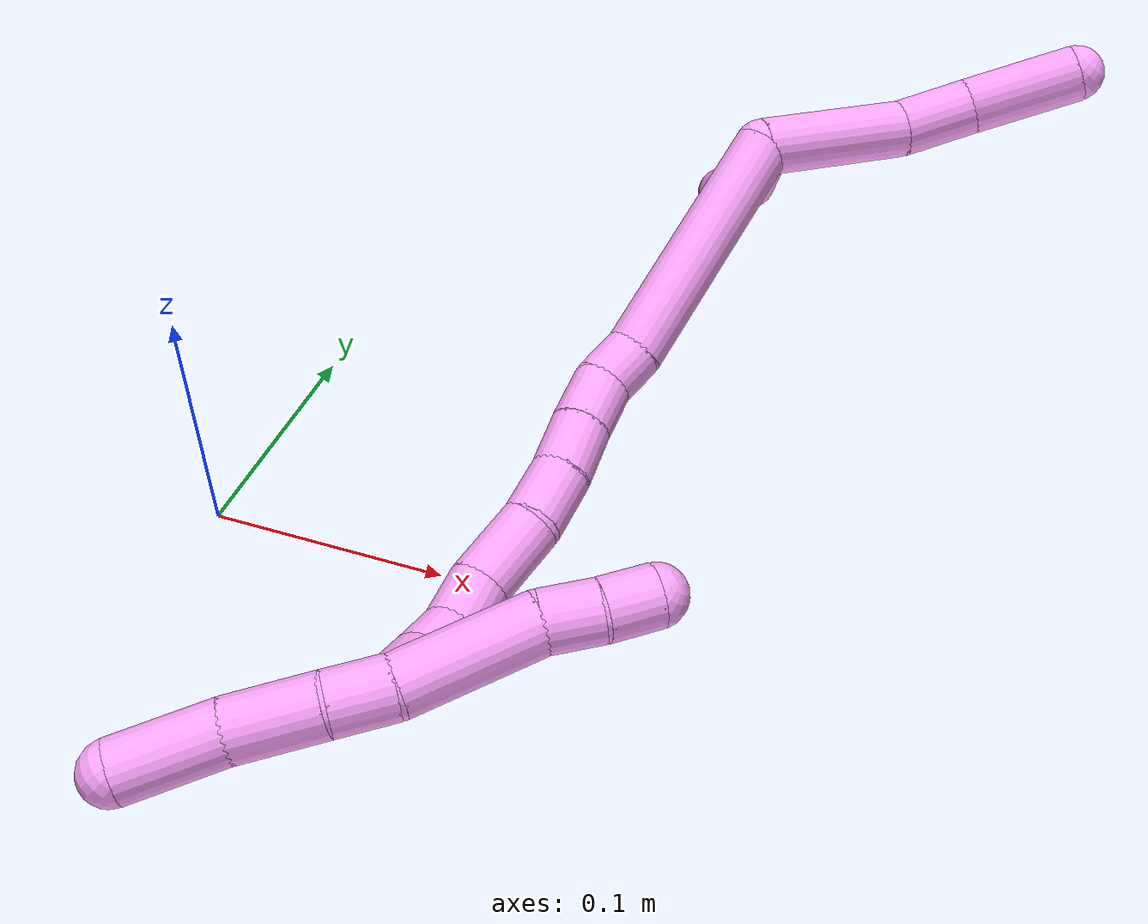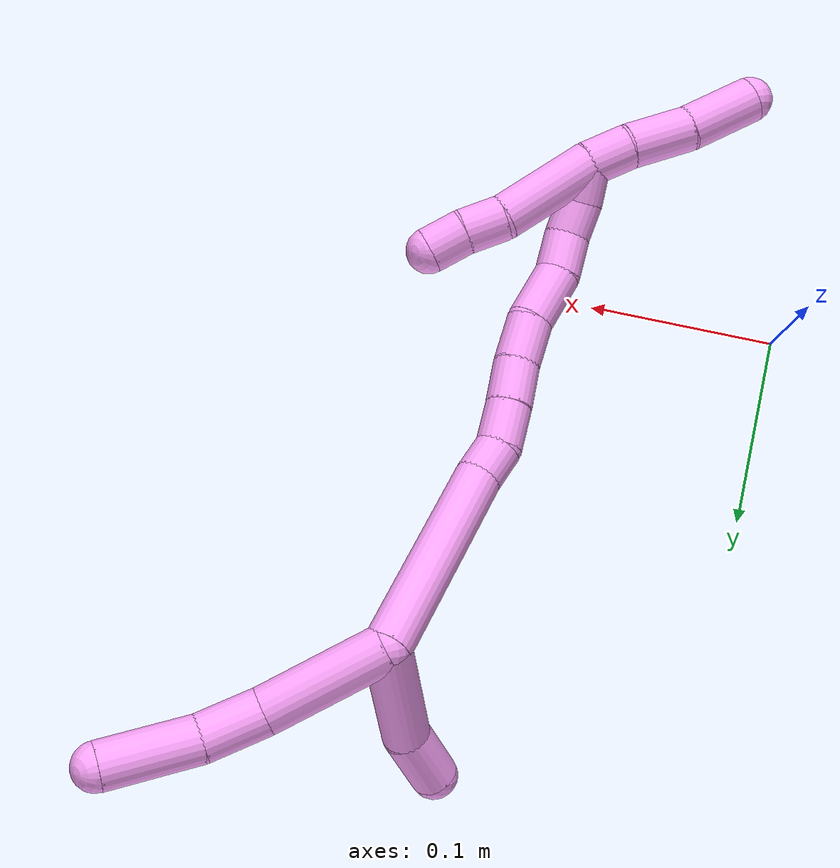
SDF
<sdf version="1.7">
 <world name="default">
  <model name="4">
   <static>0</static>
   <link name="4">
    <collision name="collision-cylinder-e_1_2_8">
     <pose>0.025408 0.002858 0.021674 -0.131092 0.860272 -0.060211</pose>
     <geometry><cylinder><radius>0.0125</radius><length>0.067037</length></cylinder></geometry>
     <surface>
      <friction><ode><mu>1.16</mu><mu2>1.16</mu2><slip1>0</slip1><slip2>0</slip2></ode></friction>
      <contact><ode><kp>1e+06</kp><kd>1</kd><max_vel>0</max_vel><min_depth>0.001</min_depth></ode></contact>
     </surface>
    </collision>
    <visual name="visual-cylinder-e_1_2_8">
     <pose>0.025408 0.002858 0.021674 -0.131092 0.860272 -0.060211</pose>
     <geometry><cylinder><radius>0.0125</radius><length>0.067037</length></cylinder></geometry>
     <material><ambient>1 0.65098 0.996078 1</ambient></material>
    </visual>
    <collision name="collision-cylinder-e_2_8_9">
     <pose>0.060223 0.006127 0.05695 -0.030248 0.604889 -0.009439</pose>
     <geometry><cylinder><radius>0.0125</radius><length>0.033086</length></cylinder></geometry>
     <surface>
      <friction><ode><mu>1.16</mu><mu2>1.16</mu2><slip1>0</slip1><slip2>0</slip2></ode></friction>
      <contact><ode><kp>1e+06</kp><kd>1</kd><max_vel>0</max_vel><min_depth>0.001</min_depth></ode></contact>
     </surface>
    </collision>
    <visual name="visual-cylinder-e_2_8_9">
     <pose>0.060223 0.006127 0.05695 -0.030248 0.604889 -0.009439</pose>
     <geometry><cylinder><radius>0.0125</radius><length>0.033086</length></cylinder></geometry>
     <material><ambient>1 0.65098 0.996078 1</ambient></material>
    </visual>
    <collision name="collision-cylinder-e_3_9_6">
     <pose>0.081655 0.003566 0.092196 0.136471 0.503136 0.035126</pose>
     <geometry><cylinder><radius>0.0125</radius><length>0.049877</length></cylinder></geometry>
     <surface>
      <friction><ode><mu>1.16</mu><mu2>1.16</mu2><slip1>0</slip1><slip2>0</slip2></ode></friction>
      <contact><ode><kp>1e+06</kp><kd>1</kd><max_vel>0</max_vel><min_depth>0.001</min_depth></ode></contact>
     </surface>
    </collision>
    <visual name="visual-cylinder-e_3_9_6">
     <pose>0.081655 0.003566 0.092196 0.136471 0.503136 0.035126</pose>
     <geometry><cylinder><radius>0.0125</radius><length>0.049877</length></cylinder></geometry>
     <material><ambient>1 0.65098 0.996078 1</ambient></material>
    </visual>
    <collision name="collision-cylinder-e_1_2_10">
     <pose>0.02044 0.021032 -0.014342 -2.16928 0.676535 -1.17465</pose>
     <geometry><cylinder><radius>0.0125</radius><length>0.065294</length></cylinder></geometry>
     <surface>
      <friction><ode><mu>1.16</mu><mu2>1.16</mu2><slip1>0</slip1><slip2>0</slip2></ode></friction>
      <contact><ode><kp>1e+06</kp><kd>1</kd><max_vel>0</max_vel><min_depth>0.001</min_depth></ode></contact>
     </surface>
    </collision>
    <visual name="visual-cylinder-e_1_2_10">
     <pose>0.02044 0.021032 -0.014342 -2.16928 0.676535 -1.17465</pose>
     <geometry><cylinder><radius>0.0125</radius><length>0.065294</length></cylinder></geometry>
     <material><ambient>1 0.65098 0.996078 1</ambient></material>
    </visual>
    <collision name="collision-cylinder-e_2_10_5">
     <pose>0.047499 0.054586 -0.038709 -2.24587 0.391327 -0.782566</pose>
     <geometry><cylinder><radius>0.0125</radius><length>0.034706</length></cylinder></geometry>
     <surface>
      <friction><ode><mu>1.16</mu><mu2>1.16</mu2><slip1>0</slip1><slip2>0</slip2></ode></friction>
      <contact><ode><kp>1e+06</kp><kd>1</kd><max_vel>0</max_vel><min_depth>0.001</min_depth></ode></contact>
     </surface>
    </collision>
    <visual name="visual-cylinder-e_2_10_5">
     <pose>0.047499 0.054586 -0.038709 -2.24587 0.391327 -0.782566</pose>
     <geometry><cylinder><radius>0.0125</radius><length>0.034706</length></cylinder></geometry>
     <material><ambient>1 0.65098 0.996078 1</ambient></material>
    </visual>
    <collision name="collision-cylinder-e_1_2_11">
     <pose>-0.009838 -0.032666 -0.043138 2.49348 -0.179841 -0.524486</pose>
     <geometry><cylinder><radius>0.0125</radius><length>0.109996</length></cylinder></geometry>
     <surface>
      <friction><ode><mu>1.16</mu><mu2>1.16</mu2><slip1>0</slip1><slip2>0</slip2></ode></friction>
      <contact><ode><kp>1e+06</kp><kd>1</kd><max_vel>0</max_vel><min_depth>0.001</min_depth></ode></contact>
     </surface>
    </collision>
    <visual name="visual-cylinder-e_1_2_11">
     <pose>-0.009838 -0.032666 -0.043138 2.49348 -0.179841 -0.524486</pose>
     <geometry><cylinder><radius>0.0125</radius><length>0.109996</length></cylinder></geometry>
     <material><ambient>1 0.65098 0.996078 1</ambient></material>
    </visual>
    <collision name="collision-cylinder-e_2_11_12">
     <pose>-0.023726 -0.070914 -0.09374 2.49942 -0.410013 -1.11745</pose>
     <geometry><cylinder><radius>0.0125</radius><length>0.020324</length></cylinder></geometry>
     <surface>
      <friction><ode><mu>1.16</mu><mu2>1.16</mu2><slip1>0</slip1><slip2>0</slip2></ode></friction>
      <contact><ode><kp>1e+06</kp><kd>1</kd><max_vel>0</max_vel><min_depth>0.001</min_depth></ode></contact>
     </surface>
    </collision>
    <visual name="visual-cylinder-e_2_11_12">
     <pose>-0.023726 -0.070914 -0.09374 2.49942 -0.410013 -1.11745</pose>
     <geometry><cylinder><radius>0.0125</radius><length>0.020324</length></cylinder></geometry>
     <material><ambient>1 0.65098 0.996078 1</ambient></material>
    </visual>
    <collision name="collision-cylinder-e_3_12_13">
     <pose>-0.031239 -0.085976 -0.107442 2.15285 -0.296116 -0.539902</pose>
     <geometry><cylinder><radius>0.0125</radius><length>0.023732</length></cylinder></geometry>
     <surface>
      <friction><ode><mu>1.16</mu><mu2>1.16</mu2><slip1>0</slip1><slip2>0</slip2></ode></friction>
      <contact><ode><kp>1e+06</kp><kd>1</kd><max_vel>0</max_vel><min_depth>0.001</min_depth></ode></contact>
     </surface>
    </collision>
    <visual name="visual-cylinder-e_3_12_13">
     <pose>-0.031239 -0.085976 -0.107442 2.15285 -0.296116 -0.539902</pose>
     <geometry><cylinder><radius>0.0125</radius><length>0.023732</length></cylinder></geometry>
     <material><ambient>1 0.65098 0.996078 1</ambient></material>
    </visual>
    <collision name="collision-cylinder-e_4_13_14">
     <pose>-0.037691 -0.105437 -0.119866 2.12558 -0.24928 -0.442706</pose>
     <geometry><cylinder><radius>0.0125</radius><length>0.024231</length></cylinder></geometry>
     <surface>
      <friction><ode><mu>1.16</mu><mu2>1.16</mu2><slip1>0</slip1><slip2>0</slip2></ode></friction>
      <contact><ode><kp>1e+06</kp><kd>1</kd><max_vel>0</max_vel><min_depth>0.001</min_depth></ode></contact>
     </surface>
    </collision>
    <visual name="visual-cylinder-e_4_13_14">
     <pose>-0.037691 -0.105437 -0.119866 2.12558 -0.24928 -0.442706</pose>
     <geometry><cylinder><radius>0.0125</radius><length>0.024231</length></cylinder></geometry>
     <material><ambient>1 0.65098 0.996078 1</ambient></material>
    </visual>
    <collision name="collision-cylinder-e_5_14_15">
     <pose>-0.045065 -0.125294 -0.133006 2.18434 -0.3482 -0.653635</pose>
     <geometry><cylinder><radius>0.0125</radius><length>0.025702</length></cylinder></geometry>
     <surface>
      <friction><ode><mu>1.16</mu><mu2>1.16</mu2><slip1>0</slip1><slip2>0</slip2></ode></friction>
      <contact><ode><kp>1e+06</kp><kd>1</kd><max_vel>0</max_vel><min_depth>0.001</min_depth></ode></contact>
     </surface>
    </collision>
    <visual name="visual-cylinder-e_5_14_15">
     <pose>-0.045065 -0.125294 -0.133006 2.18434 -0.3482 -0.653635</pose>
     <geometry><cylinder><radius>0.0125</radius><length>0.025702</length></cylinder></geometry>
     <material><ambient>1 0.65098 0.996078 1</ambient></material>
    </visual>
    <collision name="collision-cylinder-e_6_15_16">
     <pose>-0.055582 -0.144867 -0.151168 2.42828 -0.392357 -0.980001</pose>
     <geometry><cylinder><radius>0.0125</radius><length>0.032077</length></cylinder></geometry>
     <surface>
      <friction><ode><mu>1.16</mu><mu2>1.16</mu2><slip1>0</slip1><slip2>0</slip2></ode></friction>
      <contact><ode><kp>1e+06</kp><kd>1</kd><max_vel>0</max_vel><min_depth>0.001</min_depth></ode></contact>
     </surface>
    </collision>
    <visual name="visual-cylinder-e_6_15_16">
     <pose>-0.055582 -0.144867 -0.151168 2.42828 -0.392357 -0.980001</pose>
     <geometry><cylinder><radius>0.0125</radius><length>0.032077</length></cylinder></geometry>
     <material><ambient>1 0.65098 0.996078 1</ambient></material>
    </visual>
    <collision name="collision-cylinder-e_7_16_17">
     <pose>-0.065846 -0.163775 -0.167847 2.10689 -0.368086 -0.632303</pose>
     <geometry><cylinder><radius>0.0125</radius><length>0.022965</length></cylinder></geometry>
     <surface>
      <friction><ode><mu>1.16</mu><mu2>1.16</mu2><slip1>0</slip1><slip2>0</slip2></ode></friction>
      <contact><ode><kp>1e+06</kp><kd>1</kd><max_vel>0</max_vel><min_depth>0.001</min_depth></ode></contact>
     </surface>
    </collision>
    <visual name="visual-cylinder-e_7_16_17">
     <pose>-0.065846 -0.163775 -0.167847 2.10689 -0.368086 -0.632303</pose>
     <geometry><cylinder><radius>0.0125</radius><length>0.022965</length></cylinder></geometry>
     <material><ambient>1 0.65098 0.996078 1</ambient></material>
    </visual>
    <collision name="collision-cylinder-e_8_17_18">
     <pose>-0.076287 -0.18022 -0.17659 1.99547 -0.671402 -0.991337</pose>
     <geometry><cylinder><radius>0.0125</radius><length>0.020283</length></cylinder></geometry>
     <surface>
      <friction><ode><mu>1.16</mu><mu2>1.16</mu2><slip1>0</slip1><slip2>0</slip2></ode></friction>
      <contact><ode><kp>1e+06</kp><kd>1</kd><max_vel>0</max_vel><min_depth>0.001</min_depth></ode></contact>
     </surface>
    </collision>
    <visual name="visual-cylinder-e_8_17_18">
     <pose>-0.076287 -0.18022 -0.17659 1.99547 -0.671402 -0.991337</pose>
     <geometry><cylinder><radius>0.0125</radius><length>0.020283</length></cylinder></geometry>
     <material><ambient>1 0.65098 0.996078 1</ambient></material>
    </visual>
    <collision name="collision-cylinder-e_9_18_1">
     <pose>-0.089476 -0.195163 -0.180388 1.63894 -0.727564 -0.774072</pose>
     <geometry><cylinder><radius>0.0125</radius><length>0.020691</length></cylinder></geometry>
     <surface>
      <friction><ode><mu>1.16</mu><mu2>1.16</mu2><slip1>0</slip1><slip2>0</slip2></ode></friction>
      <contact><ode><kp>1e+06</kp><kd>1</kd><max_vel>0</max_vel><min_depth>0.001</min_depth></ode></contact>
     </surface>
    </collision>
    <visual name="visual-cylinder-e_9_18_1">
     <pose>-0.089476 -0.195163 -0.180388 1.63894 -0.727564 -0.774072</pose>
     <geometry><cylinder><radius>0.0125</radius><length>0.020691</length></cylinder></geometry>
     <material><ambient>1 0.65098 0.996078 1</ambient></material>
    </visual>
    <collision name="collision-cylinder-e_1_1_19">
     <pose>-0.078768 -0.197093 -0.159957 -0.269047 0.680244 -0.095714</pose>
     <geometry><cylinder><radius>0.0125</radius><length>0.055926</length></cylinder></geometry>
     <surface>
      <friction><ode><mu>1.16</mu><mu2>1.16</mu2><slip1>0</slip1><slip2>0</slip2></ode></friction>
      <contact><ode><kp>1e+06</kp><kd>1</kd><max_vel>0</max_vel><min_depth>0.001</min_depth></ode></contact>
     </surface>
    </collision>
    <visual name="visual-cylinder-e_1_1_19">
     <pose>-0.078768 -0.197093 -0.159957 -0.269047 0.680244 -0.095714</pose>
     <geometry><cylinder><radius>0.0125</radius><length>0.055926</length></cylinder></geometry>
     <material><ambient>1 0.65098 0.996078 1</ambient></material>
    </visual>
    <collision name="collision-cylinder-e_2_19_20">
     <pose>-0.053314 -0.191599 -0.130833 0.034822 0.766303 0.014037</pose>
     <geometry><cylinder><radius>0.0125</radius><length>0.022686</length></cylinder></geometry>
     <surface>
      <friction><ode><mu>1.16</mu><mu2>1.16</mu2><slip1>0</slip1><slip2>0</slip2></ode></friction>
      <contact><ode><kp>1e+06</kp><kd>1</kd><max_vel>0</max_vel><min_depth>0.001</min_depth></ode></contact>
     </surface>
    </collision>
    <visual name="visual-cylinder-e_2_19_20">
     <pose>-0.053314 -0.191599 -0.130833 0.034822 0.766303 0.014037</pose>
     <geometry><cylinder><radius>0.0125</radius><length>0.022686</length></cylinder></geometry>
     <material><ambient>1 0.65098 0.996078 1</ambient></material>
    </visual>
    <collision name="collision-cylinder-e_3_20_4">
     <pose>-0.037719 -0.190707 -0.115369 -0.159848 0.807804 -0.068438</pose>
     <geometry><cylinder><radius>0.0125</radius><length>0.021388</length></cylinder></geometry>
     <surface>
      <friction><ode><mu>1.16</mu><mu2>1.16</mu2><slip1>0</slip1><slip2>0</slip2></ode></friction>
      <contact><ode><kp>1e+06</kp><kd>1</kd><max_vel>0</max_vel><min_depth>0.001</min_depth></ode></contact>
     </surface>
    </collision>
    <visual name="visual-cylinder-e_3_20_4">
     <pose>-0.037719 -0.190707 -0.115369 -0.159848 0.807804 -0.068438</pose>
     <geometry><cylinder><radius>0.0125</radius><length>0.021388</length></cylinder></geometry>
     <material><ambient>1 0.65098 0.996078 1</ambient></material>
    </visual>
    <collision name="collision-cylinder-e_1_1_21">
     <pose>-0.104745 -0.203364 -0.189804 3.08624 -0.755614 -3.00231</pose>
     <geometry><cylinder><radius>0.0125</radius><length>0.024465</length></cylinder></geometry>
     <surface>
      <friction><ode><mu>1.16</mu><mu2>1.16</mu2><slip1>0</slip1><slip2>0</slip2></ode></friction>
      <contact><ode><kp>1e+06</kp><kd>1</kd><max_vel>0</max_vel><min_depth>0.001</min_depth></ode></contact>
     </surface>
    </collision>
    <visual name="visual-cylinder-e_1_1_21">
     <pose>-0.104745 -0.203364 -0.189804 3.08624 -0.755614 -3.00231</pose>
     <geometry><cylinder><radius>0.0125</radius><length>0.024465</length></cylinder></geometry>
     <material><ambient>1 0.65098 0.996078 1</ambient></material>
    </visual>
    <collision name="collision-cylinder-e_2_21_22">
     <pose>-0.123692 -0.203099 -0.212946 -3.08852 -0.636937 2.98091</pose>
     <geometry><cylinder><radius>0.0125</radius><length>0.035507</length></cylinder></geometry>
     <surface>
      <friction><ode><mu>1.16</mu><mu2>1.16</mu2><slip1>0</slip1><slip2>0</slip2></ode></friction>
      <contact><ode><kp>1e+06</kp><kd>1</kd><max_vel>0</max_vel><min_depth>0.001</min_depth></ode></contact>
     </surface>
    </collision>
    <visual name="visual-cylinder-e_2_21_22">
     <pose>-0.123692 -0.203099 -0.212946 -3.08852 -0.636937 2.98091</pose>
     <geometry><cylinder><radius>0.0125</radius><length>0.035507</length></cylinder></geometry>
     <material><ambient>1 0.65098 0.996078 1</ambient></material>
    </visual>
    <collision name="collision-cylinder-e_3_22_3">
     <pose>-0.146526 -0.204176 -0.242899 3.02531 -0.660288 -2.80509</pose>
     <geometry><cylinder><radius>0.0125</radius><length>0.040028</length></cylinder></geometry>
     <surface>
      <friction><ode><mu>1.16</mu><mu2>1.16</mu2><slip1>0</slip1><slip2>0</slip2></ode></friction>
      <contact><ode><kp>1e+06</kp><kd>1</kd><max_vel>0</max_vel><min_depth>0.001</min_depth></ode></contact>
     </surface>
    </collision>
    <visual name="visual-cylinder-e_3_22_3">
     <pose>-0.146526 -0.204176 -0.242899 3.02531 -0.660288 -2.80509</pose>
     <geometry><cylinder><radius>0.0125</radius><length>0.040028</length></cylinder></geometry>
     <material><ambient>1 0.65098 0.996078 1</ambient></material>
    </visual>
    <collision name="collision-sphere-3">
     <pose>-0.158801 -0.20601 -0.2586 0 -0 0</pose>
     <geometry><sphere><radius>0.0125</radius></sphere></geometry>
     <surface>
      <friction><ode><mu>1.16</mu><mu2>1.16</mu2><slip1>0</slip1><slip2>0</slip2></ode></friction>
      <contact><ode><kp>1e+06</kp><kd>1</kd><max_vel>0</max_vel><min_depth>0.001</min_depth></ode></contact>
     </surface>
    </collision>
    <visual name="visual-sphere-3">
     <pose>-0.158801 -0.20601 -0.2586 0 -0 0</pose>
     <geometry><sphere><radius>0.0125</radius></sphere></geometry>
     <material><ambient>1 0.65098 0.996078 1</ambient></material>
    </visual>
    <collision name="collision-sphere-22">
     <pose>-0.13425 -0.202342 -0.227198 0 -0 0</pose>
     <geometry><sphere><radius>0.0125</radius></sphere></geometry>
     <surface>
      <friction><ode><mu>1.16</mu><mu2>1.16</mu2><slip1>0</slip1><slip2>0</slip2></ode></friction>
      <contact><ode><kp>1e+06</kp><kd>1</kd><max_vel>0</max_vel><min_depth>0.001</min_depth></ode></contact>
     </surface>
    </collision>
    <visual name="visual-sphere-22">
     <pose>-0.13425 -0.202342 -0.227198 0 -0 0</pose>
     <geometry><sphere><radius>0.0125</radius></sphere></geometry>
     <material><ambient>1 0.65098 0.996078 1</ambient></material>
    </visual>
    <collision name="collision-sphere-21">
     <pose>-0.113133 -0.203856 -0.198694 0 -0 0</pose>
     <geometry><sphere><radius>0.0125</radius></sphere></geometry>
     <surface>
      <friction><ode><mu>1.16</mu><mu2>1.16</mu2><slip1>0</slip1><slip2>0</slip2></ode></friction>
      <contact><ode><kp>1e+06</kp><kd>1</kd><max_vel>0</max_vel><min_depth>0.001</min_depth></ode></contact>
     </surface>
    </collision>
    <visual name="visual-sphere-21">
     <pose>-0.113133 -0.203856 -0.198694 0 -0 0</pose>
     <geometry><sphere><radius>0.0125</radius></sphere></geometry>
     <material><ambient>1 0.65098 0.996078 1</ambient></material>
    </visual>
    <collision name="collision-sphere-4">
     <pose>-0.029989 -0.18953 -0.108073 0 -0 0</pose>
     <geometry><sphere><radius>0.0125</radius></sphere></geometry>
     <surface>
      <friction><ode><mu>1.16</mu><mu2>1.16</mu2><slip1>0</slip1><slip2>0</slip2></ode></friction>
      <contact><ode><kp>1e+06</kp><kd>1</kd><max_vel>0</max_vel><min_depth>0.001</min_depth></ode></contact>
     </surface>
    </collision>
    <visual name="visual-sphere-4">
     <pose>-0.029989 -0.18953 -0.108073 0 -0 0</pose>
     <geometry><sphere><radius>0.0125</radius></sphere></geometry>
     <material><ambient>1 0.65098 0.996078 1</ambient></material>
    </visual>
    <collision name="collision-sphere-20">
     <pose>-0.045448 -0.191883 -0.122666 0 -0 0</pose>
     <geometry><sphere><radius>0.0125</radius></sphere></geometry>
     <surface>
      <friction><ode><mu>1.16</mu><mu2>1.16</mu2><slip1>0</slip1><slip2>0</slip2></ode></friction>
      <contact><ode><kp>1e+06</kp><kd>1</kd><max_vel>0</max_vel><min_depth>0.001</min_depth></ode></contact>
     </surface>
    </collision>
    <visual name="visual-sphere-20">
     <pose>-0.045448 -0.191883 -0.122666 0 -0 0</pose>
     <geometry><sphere><radius>0.0125</radius></sphere></geometry>
     <material><ambient>1 0.65098 0.996078 1</ambient></material>
    </visual>
    <collision name="collision-sphere-5">
     <pose>0.054118 0.067109 -0.048734 0 -0 0</pose>
     <geometry><sphere><radius>0.0125</radius></sphere></geometry>
     <surface>
      <friction><ode><mu>1.16</mu><mu2>1.16</mu2><slip1>0</slip1><slip2>0</slip2></ode></friction>
      <contact><ode><kp>1e+06</kp><kd>1</kd><max_vel>0</max_vel><min_depth>0.001</min_depth></ode></contact>
     </surface>
    </collision>
    <visual name="visual-sphere-5">
     <pose>0.054118 0.067109 -0.048734 0 -0 0</pose>
     <geometry><sphere><radius>0.0125</radius></sphere></geometry>
     <material><ambient>1 0.65098 0.996078 1</ambient></material>
    </visual>
    <collision name="collision-sphere-10">
     <pose>0.04088 0.042063 -0.028684 0 -0 0</pose>
     <geometry><sphere><radius>0.0125</radius></sphere></geometry>
     <surface>
      <friction><ode><mu>1.16</mu><mu2>1.16</mu2><slip1>0</slip1><slip2>0</slip2></ode></friction>
      <contact><ode><kp>1e+06</kp><kd>1</kd><max_vel>0</max_vel><min_depth>0.001</min_depth></ode></contact>
     </surface>
    </collision>
    <visual name="visual-sphere-10">
     <pose>0.04088 0.042063 -0.028684 0 -0 0</pose>
     <geometry><sphere><radius>0.0125</radius></sphere></geometry>
     <material><ambient>1 0.65098 0.996078 1</ambient></material>
    </visual>
    <collision name="collision-sphere-6">
     <pose>0.09368 0.000594 0.113841 0 -0 0</pose>
     <geometry><sphere><radius>0.0125</radius></sphere></geometry>
     <surface>
      <friction><ode><mu>1.16</mu><mu2>1.16</mu2><slip1>0</slip1><slip2>0</slip2></ode></friction>
      <contact><ode><kp>1e+06</kp><kd>1</kd><max_vel>0</max_vel><min_depth>0.001</min_depth></ode></contact>
     </surface>
    </collision>
    <visual name="visual-sphere-6">
     <pose>0.09368 0.000594 0.113841 0 -0 0</pose>
     <geometry><sphere><radius>0.0125</radius></sphere></geometry>
     <material><ambient>1 0.65098 0.996078 1</ambient></material>
    </visual>
    <collision name="collision-sphere-9">
     <pose>0.06963 0.006539 0.070551 0 -0 0</pose>
     <geometry><sphere><radius>0.0125</radius></sphere></geometry>
     <surface>
      <friction><ode><mu>1.16</mu><mu2>1.16</mu2><slip1>0</slip1><slip2>0</slip2></ode></friction>
      <contact><ode><kp>1e+06</kp><kd>1</kd><max_vel>0</max_vel><min_depth>0.001</min_depth></ode></contact>
     </surface>
    </collision>
    <visual name="visual-sphere-9">
     <pose>0.06963 0.006539 0.070551 0 -0 0</pose>
     <geometry><sphere><radius>0.0125</radius></sphere></geometry>
     <material><ambient>1 0.65098 0.996078 1</ambient></material>
    </visual>
    <collision name="collision-sphere-2">
     <geometry><sphere><radius>0.0125</radius></sphere></geometry>
     <surface>
      <friction><ode><mu>1.16</mu><mu2>1.16</mu2><slip1>0</slip1><slip2>0</slip2></ode></friction>
      <contact><ode><kp>1e+06</kp><kd>1</kd><max_vel>0</max_vel><min_depth>0.001</min_depth></ode></contact>
     </surface>
    </collision>
    <visual name="visual-sphere-2">
     <geometry><sphere><radius>0.0125</radius></sphere></geometry>
     <material><ambient>1 0.65098 0.996078 1</ambient></material>
    </visual>
    <collision name="collision-sphere-19">
     <pose>-0.06118 -0.191314 -0.139001 0 -0 0</pose>
     <geometry><sphere><radius>0.0125</radius></sphere></geometry>
     <surface>
      <friction><ode><mu>1.16</mu><mu2>1.16</mu2><slip1>0</slip1><slip2>0</slip2></ode></friction>
      <contact><ode><kp>1e+06</kp><kd>1</kd><max_vel>0</max_vel><min_depth>0.001</min_depth></ode></contact>
     </surface>
    </collision>
    <visual name="visual-sphere-19">
     <pose>-0.06118 -0.191314 -0.139001 0 -0 0</pose>
     <geometry><sphere><radius>0.0125</radius></sphere></geometry>
     <material><ambient>1 0.65098 0.996078 1</ambient></material>
    </visual>
    <collision name="collision-sphere-8">
     <pose>0.050816 0.005715 0.043349 0 -0 0</pose>
     <geometry><sphere><radius>0.0125</radius></sphere></geometry>
     <surface>
      <friction><ode><mu>1.16</mu><mu2>1.16</mu2><slip1>0</slip1><slip2>0</slip2></ode></friction>
      <contact><ode><kp>1e+06</kp><kd>1</kd><max_vel>0</max_vel><min_depth>0.001</min_depth></ode></contact>
     </surface>
    </collision>
    <visual name="visual-sphere-8">
     <pose>0.050816 0.005715 0.043349 0 -0 0</pose>
     <geometry><sphere><radius>0.0125</radius></sphere></geometry>
     <material><ambient>1 0.65098 0.996078 1</ambient></material>
    </visual>
    <collision name="collision-sphere-11">
     <pose>-0.019675 -0.065332 -0.086277 0 -0 0</pose>
     <geometry><sphere><radius>0.0125</radius></sphere></geometry>
     <surface>
      <friction><ode><mu>1.16</mu><mu2>1.16</mu2><slip1>0</slip1><slip2>0</slip2></ode></friction>
      <contact><ode><kp>1e+06</kp><kd>1</kd><max_vel>0</max_vel><min_depth>0.001</min_depth></ode></contact>
     </surface>
    </collision>
    <visual name="visual-sphere-11">
     <pose>-0.019675 -0.065332 -0.086277 0 -0 0</pose>
     <geometry><sphere><radius>0.0125</radius></sphere></geometry>
     <material><ambient>1 0.65098 0.996078 1</ambient></material>
    </visual>
    <collision name="collision-sphere-12">
     <pose>-0.027777 -0.076496 -0.101203 0 -0 0</pose>
     <geometry><sphere><radius>0.0125</radius></sphere></geometry>
     <surface>
      <friction><ode><mu>1.16</mu><mu2>1.16</mu2><slip1>0</slip1><slip2>0</slip2></ode></friction>
      <contact><ode><kp>1e+06</kp><kd>1</kd><max_vel>0</max_vel><min_depth>0.001</min_depth></ode></contact>
     </surface>
    </collision>
    <visual name="visual-sphere-12">
     <pose>-0.027777 -0.076496 -0.101203 0 -0 0</pose>
     <geometry><sphere><radius>0.0125</radius></sphere></geometry>
     <material><ambient>1 0.65098 0.996078 1</ambient></material>
    </visual>
    <collision name="collision-sphere-13">
     <pose>-0.034702 -0.095457 -0.113682 0 -0 0</pose>
     <geometry><sphere><radius>0.0125</radius></sphere></geometry>
     <surface>
      <friction><ode><mu>1.16</mu><mu2>1.16</mu2><slip1>0</slip1><slip2>0</slip2></ode></friction>
      <contact><ode><kp>1e+06</kp><kd>1</kd><max_vel>0</max_vel><min_depth>0.001</min_depth></ode></contact>
     </surface>
    </collision>
    <visual name="visual-sphere-13">
     <pose>-0.034702 -0.095457 -0.113682 0 -0 0</pose>
     <geometry><sphere><radius>0.0125</radius></sphere></geometry>
     <material><ambient>1 0.65098 0.996078 1</ambient></material>
    </visual>
    <collision name="collision-sphere-14">
     <pose>-0.04068 -0.115417 -0.126051 0 -0 0</pose>
     <geometry><sphere><radius>0.0125</radius></sphere></geometry>
     <surface>
      <friction><ode><mu>1.16</mu><mu2>1.16</mu2><slip1>0</slip1><slip2>0</slip2></ode></friction>
      <contact><ode><kp>1e+06</kp><kd>1</kd><max_vel>0</max_vel><min_depth>0.001</min_depth></ode></contact>
     </surface>
    </collision>
    <visual name="visual-sphere-14">
     <pose>-0.04068 -0.115417 -0.126051 0 -0 0</pose>
     <geometry><sphere><radius>0.0125</radius></sphere></geometry>
     <material><ambient>1 0.65098 0.996078 1</ambient></material>
    </visual>
    <collision name="collision-sphere-15">
     <pose>-0.04945 -0.13517 -0.139962 0 -0 0</pose>
     <geometry><sphere><radius>0.0125</radius></sphere></geometry>
     <surface>
      <friction><ode><mu>1.16</mu><mu2>1.16</mu2><slip1>0</slip1><slip2>0</slip2></ode></friction>
      <contact><ode><kp>1e+06</kp><kd>1</kd><max_vel>0</max_vel><min_depth>0.001</min_depth></ode></contact>
     </surface>
    </collision>
    <visual name="visual-sphere-15">
     <pose>-0.04945 -0.13517 -0.139962 0 -0 0</pose>
     <geometry><sphere><radius>0.0125</radius></sphere></geometry>
     <material><ambient>1 0.65098 0.996078 1</ambient></material>
    </visual>
    <collision name="collision-sphere-16">
     <pose>-0.061715 -0.154564 -0.162375 0 -0 0</pose>
     <geometry><sphere><radius>0.0125</radius></sphere></geometry>
     <surface>
      <friction><ode><mu>1.16</mu><mu2>1.16</mu2><slip1>0</slip1><slip2>0</slip2></ode></friction>
      <contact><ode><kp>1e+06</kp><kd>1</kd><max_vel>0</max_vel><min_depth>0.001</min_depth></ode></contact>
     </surface>
    </collision>
    <visual name="visual-sphere-16">
     <pose>-0.061715 -0.154564 -0.162375 0 -0 0</pose>
     <geometry><sphere><radius>0.0125</radius></sphere></geometry>
     <material><ambient>1 0.65098 0.996078 1</ambient></material>
    </visual>
    <collision name="collision-sphere-17">
     <pose>-0.069978 -0.172985 -0.173319 0 -0 0</pose>
     <geometry><sphere><radius>0.0125</radius></sphere></geometry>
     <surface>
      <friction><ode><mu>1.16</mu><mu2>1.16</mu2><slip1>0</slip1><slip2>0</slip2></ode></friction>
      <contact><ode><kp>1e+06</kp><kd>1</kd><max_vel>0</max_vel><min_depth>0.001</min_depth></ode></contact>
     </surface>
    </collision>
    <visual name="visual-sphere-17">
     <pose>-0.069978 -0.172985 -0.173319 0 -0 0</pose>
     <geometry><sphere><radius>0.0125</radius></sphere></geometry>
     <material><ambient>1 0.65098 0.996078 1</ambient></material>
    </visual>
    <collision name="collision-sphere-18">
     <pose>-0.082596 -0.187455 -0.179862 0 -0 0</pose>
     <geometry><sphere><radius>0.0125</radius></sphere></geometry>
     <surface>
      <friction><ode><mu>1.16</mu><mu2>1.16</mu2><slip1>0</slip1><slip2>0</slip2></ode></friction>
      <contact><ode><kp>1e+06</kp><kd>1</kd><max_vel>0</max_vel><min_depth>0.001</min_depth></ode></contact>
     </surface>
    </collision>
    <visual name="visual-sphere-18">
     <pose>-0.082596 -0.187455 -0.179862 0 -0 0</pose>
     <geometry><sphere><radius>0.0125</radius></sphere></geometry>
     <material><ambient>1 0.65098 0.996078 1</ambient></material>
    </visual>
    <collision name="collision-sphere-1">
     <pose>-0.096356 -0.202871 -0.180914 0 -0 0</pose>
     <geometry><sphere><radius>0.0125</radius></sphere></geometry>
     <surface>
      <friction><ode><mu>1.16</mu><mu2>1.16</mu2><slip1>0</slip1><slip2>0</slip2></ode></friction>
      <contact><ode><kp>1e+06</kp><kd>1</kd><max_vel>0</max_vel><min_depth>0.001</min_depth></ode></contact>
     </surface>
    </collision>
    <visual name="visual-sphere-1">
     <pose>-0.096356 -0.202871 -0.180914 0 -0 0</pose>
     <geometry><sphere><radius>0.0125</radius></sphere></geometry>
     <material><ambient>1 0.65098 0.996078 1</ambient></material>
    </visual>
    <inertial>
     <pose>-0.02608 -0.086559 -0.082925 0 -0 0</pose>
     <mass>0.75</mass>
     <inertia><ixx>6.9e-05</ixx><ixy>0</ixy><ixz>0</ixz><iyy>-9.5e-05</iyy><iyz>0</iyz><izz>2.3e-05</izz></inertia>
    </inertial>
   </link>
   <pose>0.16824 0.203911 0.089479 0.036324 0.781253 0.617405</pose>
  </model>
 </world>
</sdf>
